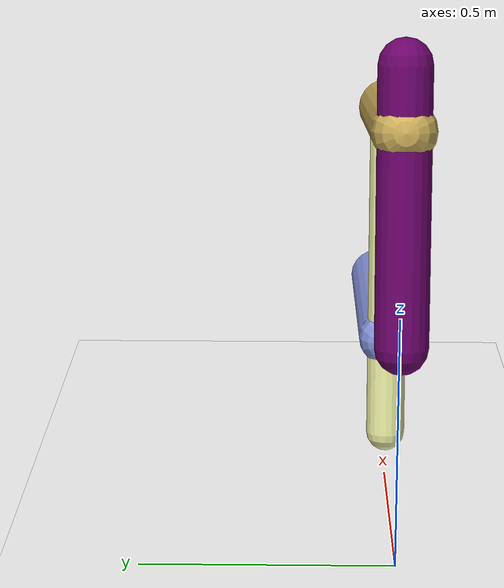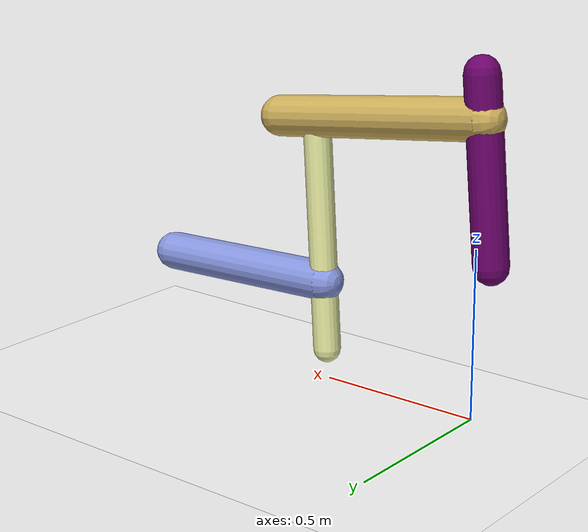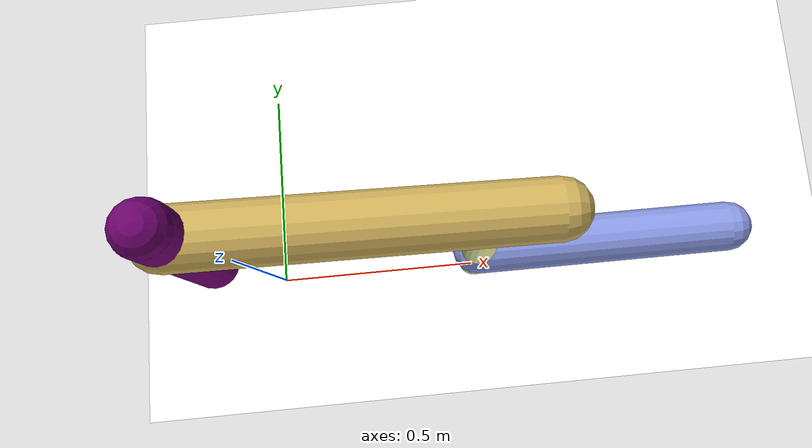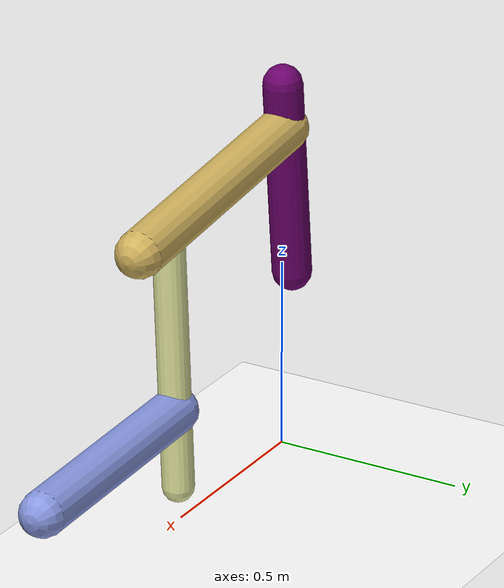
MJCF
<mujoco model="morphology">
  <option timestep="0.01"/>
  <default>
    <default class="/"/>
  </default>
  <asset>
    <texture name="texplane" type="2d" builtin="checker" rgb1="0.1 0.2 0.3" rgb2="0.2 0.3 0.4" width="300" height="300"/>
    <material name="MatPlane" class="/" texture="texplane" texrepeat="20 20" specular="1" shininess="1" reflectance="0.5"/>
  </asset>
  <worldbody>
    <light name="//unnamed_light_0" class="/" directional="true" pos="0 0 1.5" dir="0 0 -1.3" cutoff="1e+02" exponent="1" diffuse="1 1 1" specular="0.1 0.1 0.1"/>
    <geom name="ground" class="/" type="plane" size="15 15 0.5" material="MatPlane" rgba="1 1 1 1"/>
    <body name="body" pos="0 0 0.98">
      <geom name="geom0" class="/" type="capsule" contype="1" conaffinity="1" condim="3" size="0.051" rgba="0.42 0.007 0.42 1" friction="0.4 0.1 0.1" fromto="0 0 0 -0.048 0 -0.52"/>
      <body name="body1" pos="-0.011 0 -0.12">
        <geom name="geom1" class="/" type="capsule" contype="1" conaffinity="1" condim="3" size="0.061" rgba="0.81 0.69 0.36 1" friction="0.4 0.1 0.1" fromto="0 0 0 0.69 0 -0.083"/>
        <body name="body2" pos="0.56 0 -0.068">
          <geom name="geom2" class="/" type="capsule" contype="1" conaffinity="1" condim="3" size="0.041" rgba="0.92 0.94 0.64 1" friction="0.4 0.1 0.1" fromto="0 0 0 -0.039 0 -0.7"/>
          <body name="body3" pos="-0.027 0 -0.49">
            <geom name="geom3" class="/" type="capsule" contype="1" conaffinity="1" condim="3" size="0.059" rgba="0.53 0.59 0.88 1" friction="0.4 0.1 0.1" fromto="0 0 0 0.6 0 -0.023"/>
            <joint name="joint3" class="/" type="hinge" axis="0 1 0" limited="true" stiffness="20" range="-42 42" armature="0.1" damping="2"/>
          </body>
          <joint name="joint2" class="/" type="hinge" axis="0 1 0" limited="true" stiffness="20" range="-61 61" armature="0.1" damping="2"/>
        </body>
        <joint name="joint1" class="/" type="hinge" axis="0 1 0" limited="true" stiffness="20" range="-54 54" armature="0.1" damping="2"/>
      </body>
      <joint name="rootx" class="/" type="slide" axis="1 0 0" limited="false" stiffness="0" armature="0" damping="0"/>
      <joint name="rootz" class="/" type="slide" axis="0 0 1" limited="false" stiffness="0" armature="0" damping="0"/>
      <joint name="rooty" class="/" type="hinge" axis="0 1 0" limited="false" stiffness="0" armature="0" damping="0"/>
    </body>
  </worldbody>
  <actuator>
    <motor name="motor3" class="/" ctrllimited="true" ctrlrange="-1 1" gear="1.2e+02" joint="joint3"/>
    <motor name="motor2" class="/" ctrllimited="true" ctrlrange="-1 1" gear="1.2e+02" joint="joint2"/>
    <motor name="motor1" class="/" ctrllimited="true" ctrlrange="-1 1" gear="1.8e+02" joint="joint1"/>
  </actuator>
  <sensor>
    <subtreelinvel name="velocity" body="body"/>
  </sensor>
</mujoco>
